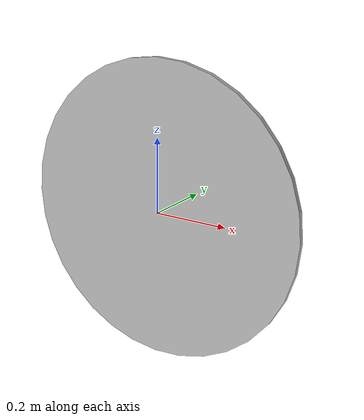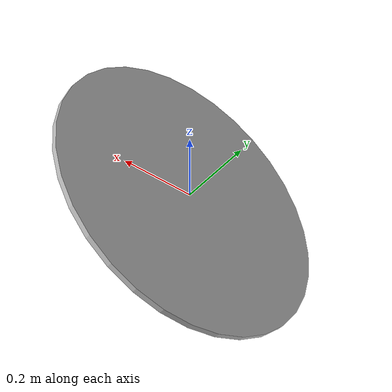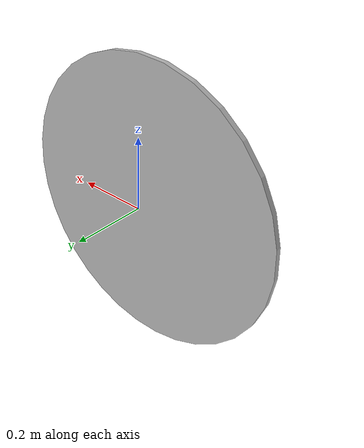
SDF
<?xml version='1.0' encoding='utf-8'?>
<sdf version="1.9">
  <model name="basefase3">
    <static>true</static>
    <link name="link">
      <visual name="basefase3">
        <geometry>
          <mesh>
            <uri>model://sae_26/basefase3/meshes/basefase3.obj</uri>
            <scale>0.5 0.5 0.5</scale>
          </mesh>
        </geometry>
      </visual>
    </link>
  </model>
</sdf>
